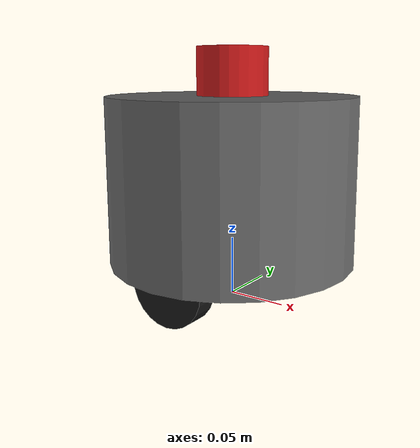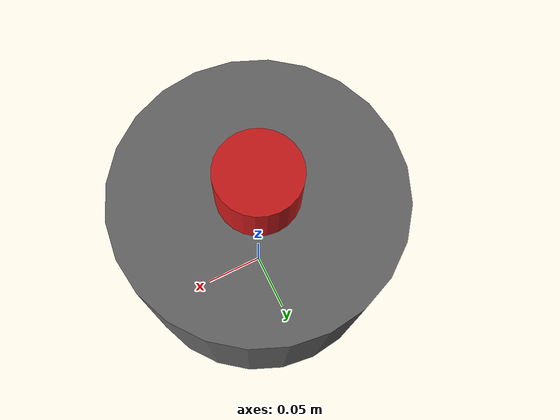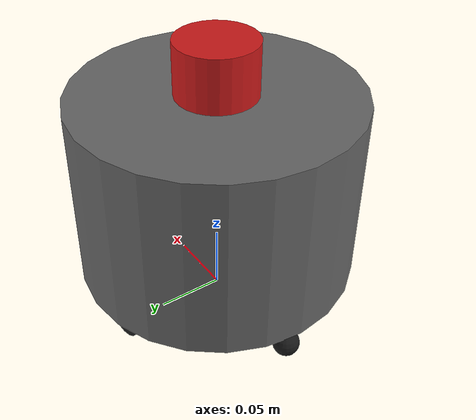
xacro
<?xml version="1.0"?>
<robot xmlns:xacro="http://www.ros.org/wiki/xacro" name="turtlebot3_burger">

  <!-- ===================== Parameters ===================== -->
  <xacro:property name="base_radius" value="0.105"/>
  <xacro:property name="base_height" value="0.14"/>
  <xacro:property name="wheel_radius" value="0.033"/>
  <xacro:property name="wheel_width"  value="0.018"/>
  <xacro:property name="wheel_separation" value="0.160"/>
  <xacro:property name="caster_radius" value="0.010"/>

  <!-- ===================== Materials ===================== -->
  <material name="black">  <color rgba="0.1 0.1 0.1 1"/></material>
  <material name="grey">   <color rgba="0.4 0.4 0.4 1"/></material>
  <material name="red">    <color rgba="0.8 0.1 0.1 1"/></material>

  <!-- ===================== base_footprint ===================== -->
  <link name="base_footprint"/>

  <!-- base_link sits at the wheel-axle height (one wheel radius above the
       ground) so the two drive wheels make contact. The body cylinder is
       shifted up so it does not drag on the floor. -->
  <joint name="base_joint" type="fixed">
    <parent link="base_footprint"/>
    <child link="base_link"/>
    <origin xyz="0 0 ${wheel_radius}" rpy="0 0 0"/>
  </joint>

  <!-- ===================== base_link ===================== -->
  <link name="base_link">
    <inertial>
      <mass value="0.8"/>
      <!-- CoM slightly behind the drive axle so it stays inside the
           2-wheel + rear-caster support triangle (prevents nose-diving). -->
      <origin xyz="-0.04 0 ${base_height/2}"/>
      <inertia ixx="0.0016" ixy="0" ixz="0"
               iyy="0.0016" iyz="0" izz="0.0030"/>
    </inertial>
    <visual>
      <origin xyz="0 0 ${base_height/2}" rpy="0 0 0"/>
      <geometry><cylinder radius="${base_radius}" length="${base_height}"/></geometry>
      <material name="grey"/>
    </visual>
    <collision>
      <origin xyz="0 0 ${base_height/2}" rpy="0 0 0"/>
      <geometry><cylinder radius="${base_radius}" length="${base_height}"/></geometry>
    </collision>
  </link>

  <!-- ===================== Wheels (macro) ===================== -->
  <xacro:macro name="wheel" params="prefix y">
    <link name="wheel_${prefix}_link">
      <inertial>
        <mass value="0.05"/>
        <origin xyz="0 0 0"/>
        <inertia ixx="0.00001" ixy="0" ixz="0"
                 iyy="0.00001" iyz="0" izz="0.00001"/>
      </inertial>
      <visual>
        <origin xyz="0 0 0" rpy="${pi/2} 0 0"/>
        <geometry><cylinder radius="${wheel_radius}" length="${wheel_width}"/></geometry>
        <material name="black"/>
      </visual>
      <collision>
        <origin xyz="0 0 0" rpy="${pi/2} 0 0"/>
        <geometry><cylinder radius="${wheel_radius}" length="${wheel_width}"/></geometry>
      </collision>
    </link>

    <joint name="wheel_${prefix}_joint" type="continuous">
      <parent link="base_link"/>
      <child link="wheel_${prefix}_link"/>
      <origin xyz="0 ${y} 0" rpy="0 0 0"/>
      <axis xyz="0 1 0"/>
      <dynamics damping="0.01" friction="0.0"/>
    </joint>
  </xacro:macro>

  <xacro:wheel prefix="left"  y="${wheel_separation/2}"/>
  <xacro:wheel prefix="right" y="-${wheel_separation/2}"/>

  <!-- ===================== Caster ===================== -->
  <link name="caster_back_link">
    <inertial>
      <mass value="0.01"/>
      <inertia ixx="0.000001" ixy="0" ixz="0"
               iyy="0.000001" iyz="0" izz="0.000001"/>
    </inertial>
    <visual>
      <geometry><sphere radius="${caster_radius}"/></geometry>
      <material name="black"/>
    </visual>
    <collision>
      <geometry><sphere radius="${caster_radius}"/></geometry>
    </collision>
  </link>

  <joint name="caster_back_joint" type="fixed">
    <parent link="base_link"/>
    <child link="caster_back_link"/>
    <!-- Ball centre sits one caster-radius above the floor; placed further
         back to widen the support triangle. -->
    <origin xyz="-0.09 0 ${caster_radius - wheel_radius}" rpy="0 0 0"/>
  </joint>

  <!-- ===================== 2D LiDAR (LDS-01) ===================== -->
  <link name="scan">
    <inertial>
      <mass value="0.05"/>
      <inertia ixx="0.00001" ixy="0" ixz="0"
               iyy="0.00001" iyz="0" izz="0.00001"/>
    </inertial>
    <visual>
      <geometry><cylinder radius="0.03" length="0.04"/></geometry>
      <material name="red"/>
    </visual>
  </link>

  <joint name="scan_joint" type="fixed">
    <parent link="base_link"/>
    <child link="scan"/>
    <!-- On top of the body cylinder (which is centred at base_height/2). -->
    <origin xyz="0 0 ${base_height + 0.02}" rpy="0 0 0"/>
  </joint>

  <!-- ===================== Gazebo / gz sim plugins ===================== -->
  <gazebo>
    <plugin filename="gz-sim-diff-drive-system" name="gz::sim::systems::DiffDrive">
      <left_joint>wheel_left_joint</left_joint>
      <right_joint>wheel_right_joint</right_joint>
      <wheel_separation>${wheel_separation}</wheel_separation>
      <wheel_radius>${wheel_radius}</wheel_radius>
      <max_linear_acceleration>1.0</max_linear_acceleration>
      <min_linear_acceleration>-1.0</min_linear_acceleration>
      <max_angular_acceleration>2.0</max_angular_acceleration>
      <min_angular_acceleration>-2.0</min_angular_acceleration>
      <max_linear_velocity>0.22</max_linear_velocity>
      <min_linear_velocity>-0.22</min_linear_velocity>
      <max_angular_velocity>2.84</max_angular_velocity>
      <min_angular_velocity>-2.84</min_angular_velocity>
      <topic>cmd_vel</topic>
      <odom_topic>odom</odom_topic>
      <tf_topic>tf</tf_topic>
      <frame_id>odom</frame_id>
      <child_frame_id>base_footprint</child_frame_id>
      <odom_publish_frequency>30</odom_publish_frequency>
    </plugin>

    <plugin filename="gz-sim-joint-state-publisher-system" name="gz::sim::systems::JointStatePublisher">
      <topic>joint_states</topic>
    </plugin>
  </gazebo>

  <gazebo reference="wheel_left_link">
    <mu1>1.5</mu1>
    <mu2>1.5</mu2>
    <kp>1000000</kp>
    <kd>100</kd>
  </gazebo>
  <gazebo reference="wheel_right_link">
    <mu1>1.5</mu1>
    <mu2>1.5</mu2>
    <kp>1000000</kp>
    <kd>100</kd>
  </gazebo>
  <gazebo reference="caster_back_link">
    <mu1>0.01</mu1>
    <mu2>0.01</mu2>
  </gazebo>

  <gazebo reference="scan">
    <sensor name="lidar" type="gpu_lidar">
      <pose>0 0 0 0 0 0</pose>
      <topic>scan</topic>
      <gz_frame_id>scan</gz_frame_id>
      <update_rate>10</update_rate>
      <visualize>false</visualize>
      <lidar>
        <scan>
          <horizontal>
            <samples>360</samples>
            <resolution>1</resolution>
            <min_angle>-3.14159</min_angle>
            <max_angle>3.14159</max_angle>
          </horizontal>
        </scan>
        <range>
          <min>0.12</min>
          <max>3.5</max>
          <resolution>0.015</resolution>
        </range>
        <noise>
          <type>gaussian</type>
          <mean>0.0</mean>
          <stddev>0.01</stddev>
        </noise>
      </lidar>
      <always_on>1</always_on>
    </sensor>
  </gazebo>

</robot>
